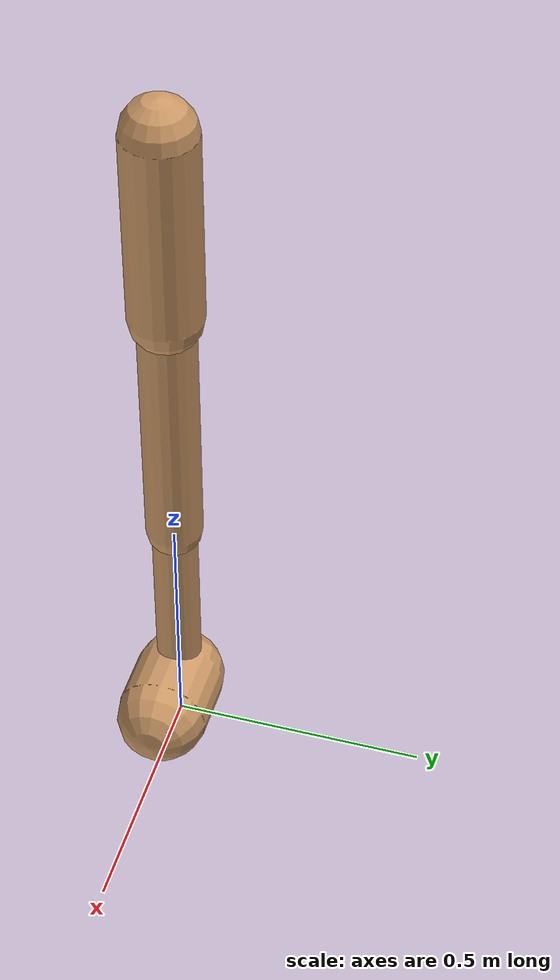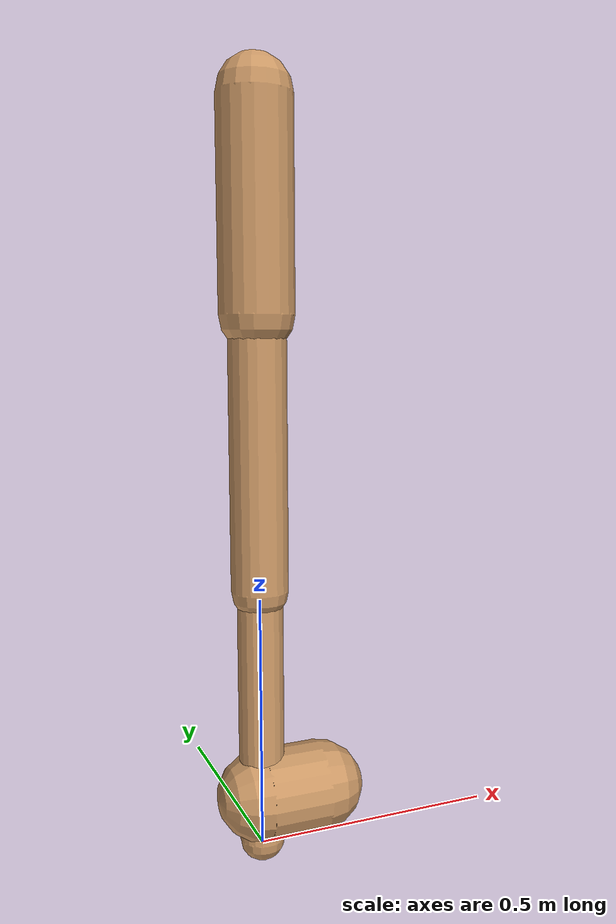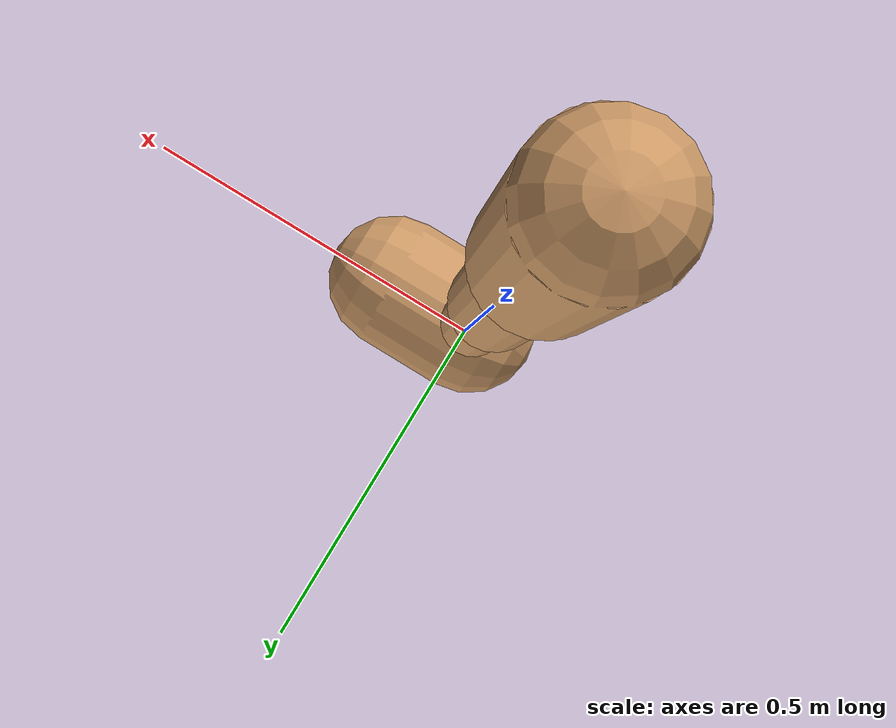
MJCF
<mujoco model="walker2d">
  <compiler angle="degree" coordinate="global" inertiafromgeom="true" />
  <default>
    <joint armature="0.01" damping=".1" limited="true" />
    <geom conaffinity="0" condim="3" contype="1" density="1000" friction="0.8 .1 .1" rgba="0.8 0.6 .4 1" />
  </default>
  <option integrator="RK4" timestep="0.002" />
  <worldbody>

    <body name="torso" pos="0 0 0.17033957204608827">
      <joint armature="0" axis="1 0 0" damping="0" limited="false" name="ignorex" pos="0 0 0" stiffness="0" type="slide" />
      <joint armature="0" axis="0 0 1" damping="0" limited="false" name="ignorez" pos="0 0 0" ref="1.25" stiffness="0" type="slide" />
      <joint armature="0" axis="0 1 0" damping="0" limited="false" name="ignorey" pos="0 0 0" stiffness="0" type="hinge" />
      <geom fromto="0 0 1.45 0 0 1.05" name="torso_geom" size="0.07224153233970314" type="capsule" />
      <body name="thigh">
        <joint axis="0 -1 0" name="thigh_joint" pos="0 0 1.05" range="-150 0" type="hinge" />
        <geom fromto="0.0 0.0 1.05 0.0 0.0 0.5193128342939581" name="thigh_geom" size="0.05594171461171593" type="capsule" />
        <body name="leg" pos="0.0 0.0 -0.08068716570604184">
          <joint axis="0 -1 0" name="leg_joint" pos="0 0 0.6" range="-150 0" type="hinge" />
          <geom fromto="0.0 0.0 0.6 0.0 0.0 0.010347593659953552" name="leg_geom" size="0.044753371689372747" type="capsule" />
          <body name="foot" pos="0.0 0.0 -0.08965240634004645">
            <joint axis="0 -1 0" name="foot_joint" pos="0 0 0.1" range="-45 45" type="hinge" />
            <geom fromto="0.0 0.0 0.1 0.12007554024604761 0.0 0.1" name="foot_geom" size="0.09071127317817915" type="capsule" />
          </body>
        </body>
      </body>

      <body name="thigh_left">
        <joint axis="0 -1 0" name="thigh_left_joint" pos="0 0 1.05" range="-150 0" type="hinge" />
        <geom fromto="0.0 0.0 1.05 0.0 0.0 0.5193128342939581" name="thigh_left_geom" rgba=".7 .3 .6 1" size="0.05594171461171593" type="capsule" />
        <body name="leg_left" pos="0.0 0.0 -0.08068716570604184">
          <joint axis="0 -1 0" name="leg_left_joint" pos="0 0 0.6" range="-150 0" type="hinge" />
          <geom fromto="0.0 0.0 0.6 0.0 0.0 0.010347593659953552" name="leg_left_geom" rgba=".7 .3 .6 1" size="0.044753371689372747" type="capsule" />
          <body name="foot_left" pos="0.0 0.0 -0.08965240634004645">
            <joint axis="0 -1 0" name="foot_left_joint" pos="0 0 0.1" range="-45 45" type="hinge" />
            <geom fromto="0.0 0.0 0.1 0.12007554024604761 0.0 0.1" name="foot_left_geom" rgba=".7 .3 .6 1" size="0.09071127317817915" type="capsule" />
          </body>
        </body>
      </body>
    </body>
  </worldbody>
  <actuator>

    <motor ctrllimited="true" ctrlrange="-1.0 1.0" gear="100" joint="thigh_joint" />
    <motor ctrllimited="true" ctrlrange="-1.0 1.0" gear="100" joint="leg_joint" />
    <motor ctrllimited="true" ctrlrange="-1.0 1.0" gear="100" joint="foot_joint" />
    <motor ctrllimited="true" ctrlrange="-1.0 1.0" gear="100" joint="thigh_left_joint" />
    <motor ctrllimited="true" ctrlrange="-1.0 1.0" gear="100" joint="leg_left_joint" />
    <motor ctrllimited="true" ctrlrange="-1.0 1.0" gear="100" joint="foot_left_joint" />

  </actuator>
</mujoco>
